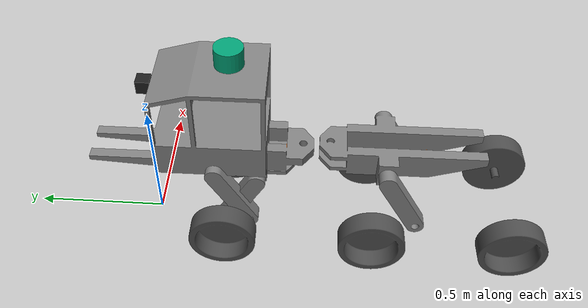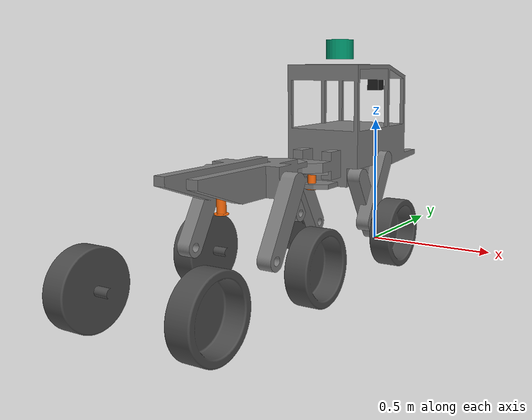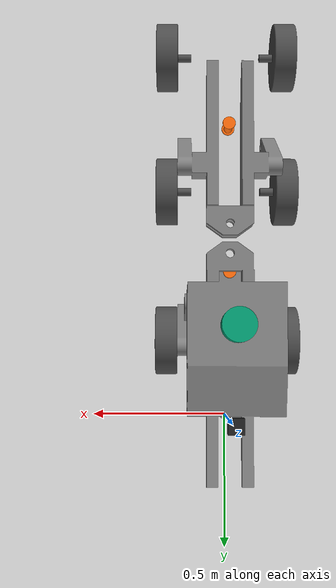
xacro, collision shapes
<?xml version="1.0" ?>
<robot name="testrig" xmlns:xacro="http://ros.org/wiki/xacro">
  <xacro:include filename="$(find testrig)/urdf/common_properties.xacro"/>
  <xacro:include filename="$(find testrig)/urdf/rig.gazebo.xacro"/>
  <xacro:include filename="$(find testrig)/urdf/rig.transmission.xacro"/>
  <xacro:include filename="$(find velodyne_description)/urdf/VLP-16.urdf.xacro"/>

  <xacro:property name="z" value="0.360"/>
  <!-- LIDAR -->

  <xacro:arg name="gpu" default="false"/>
  <xacro:property name="gpu" value="$(arg gpu)" />
  <!-- CAMERA -->
  <xacro:property name="camera_link" value="0.05" /> <!-- Size of square 'camera' box -->
  <xacro:property name="imu_link" value="0.05" />

  <link name="base_footprint">
  </link>

  <joint name="base_joint" type="fixed">
    <parent link="base_footprint"/>
    <child link="base_link1"/>
    <origin xyz="0 -0.44 0" rpy="0 0 0"/>
  </joint>

<!-- Front -->
  <link name="base_link1">
    <visual>
      <origin xyz="0 0 ${z}" rpy="0 0 0"/>
      <geometry>
        <mesh filename="package://testrig/stl/framvagn.stl" scale="0.001 0.001 0.001"/>
      </geometry>
      <material name="grey"/>
    </visual>
	<collision>
		<origin xyz="0 0 ${z}" rpy="0 0 0"/>
		<geometry>
			<mesh filename="package://testrig/stl/framvagn.stl" scale="0.001 0.001 0.001"/>
		</geometry>
	</collision>
    <inertial>
      <origin xyz="0 0 ${z}" />
      <mass value="20" />
      <inertia ixx="4.767" ixy="0" ixz="0"
               iyy="1.653" iyz="0.863"
               izz="4.094" />
      </inertial>
  </link>

  <!-- LIDAR, CAMERA, IMU -->

  <VLP-16 parent="base_link1" name="velodyne">
    <origin xyz="0 0.13 0.75" rpy="0 0 0" />
  </VLP-16>

  <joint name="camera_joint" type="fixed">
    <axis xyz="0 1 0" />
    <origin xyz="0 0.4315 0.65" rpy="0 0 1.57"/>
    <parent link="base_link1"/>
    <child link="camera_link"/>
  </joint>

  <!-- Camera -->
  <link name="camera_link">
    <collision>
      <origin xyz="0 0 0" rpy="0 0 0"/>
      <geometry>
    <box size="${camera_link} ${camera_link} ${camera_link}"/>
      </geometry>
    </collision>
    <visual>
      <origin xyz="0 0 0" rpy="0 0 0"/>
      <geometry>
    <box size="${camera_link} ${camera_link} ${camera_link}"/>
      </geometry>
      <material name="Black"/>
    </visual>
    <inertial>
      <mass value="1e-5" />
      <origin xyz="0 0 0" rpy="0 0 0"/>
      <inertia ixx="1e-6" ixy="0" ixz="0" iyy="1e-6" iyz="0" izz="1e-6" />
    </inertial>
  </link>

<!-- Front LW-->
  <joint name="wheel_front_left_joint" type="continuous">
    <parent link="base_link1"/>
    <child link="wheel_front_left_link"/>
    <origin xyz="-0.130 0.160 ${z-0.252}" rpy="1.57 -1.57 0"/>
    <axis xyz="0 1 0"/>
  </joint>

  <link name="wheel_front_left_link">
    <visual>
      <origin xyz="0 0 0" rpy="0 0 0"/>
      <geometry>
        <mesh filename="package://testrig/stl/wheel.stl" scale="0.001 0.001 0.001"/>
      </geometry>
      <material name="dark"/>
    </visual>
    <collision>
		<origin xyz="0 0 0" rpy="0 0 0"/>
		<geometry>
			<mesh filename="package://testrig/stl/wheel.stl" scale="0.001 0.001 0.001"/>
		</geometry>
	</collision>
    <inertial>
      <origin xyz="0 0 0" />
      <mass value="1" />
      <inertia ixx="0.023" ixy="0" ixz="0"
               iyy="0.020" iyz="0"
               izz="0.023" />
      </inertial>
  </link>
<!-- Front LW-->
  <joint name="wheel_front_right_joint" type="continuous">
    <parent link="base_link1"/>
    <child link="wheel_front_right_link"/>
    <origin xyz="0.130 0.160 ${z-0.252}" rpy="1.57 1.57 0"/>
    <axis xyz="0 -1 0"/>
  </joint>

  <link name="wheel_front_right_link">
    <visual>
      <origin xyz="0 0 0" rpy="0 0 0"/>
      <geometry>
        <mesh filename="package://testrig/stl/wheel.stl" scale="0.001 0.001 0.001"/>
      </geometry>
      <material name="dark"/>
    </visual>
    <collision>
		<origin xyz="0 0 0" rpy="0 0 0"/>
		<geometry>
			<mesh filename="package://testrig/stl/wheel.stl" scale="0.001 0.001 0.001"/>
		</geometry>
	</collision>
    <inertial>
      <origin xyz="0 0 0" />
      <mass value="1" />
      <inertia ixx="0.023" ixy="0" ixz="0"
               iyy="0.020" iyz="0"
               izz="0.023" />
      </inertial>
  </link>
<!-- Joint between front and middle -->
  <joint name="front_joint_middle" type="revolute">
    <parent link="base_link1"/>
    <child link="front_link_middle"/>
    <limit effort="1000" lower="-0.75" upper="0.75" velocity="0.5" />
    <origin xyz="0.0 -0.070 ${z-0.035}" rpy="1.57 0 0"/>
    <axis xyz="0 1 0"/>
  </joint>

  <link name="front_link_middle">
    <visual>
      <origin xyz="0 0 0" rpy="0 0 0"/>
      <geometry>
        <mesh filename="package://testrig/stl/pin.stl" scale="0.001 0.001 0.001"/>
      </geometry>
      <material name="orange"/>
    </visual>
    <collision>
		<origin xyz="0 0 0" rpy="0 0 0"/>
		<geometry>
			<mesh filename="package://testrig/stl/pin.stl" scale="0.001 0.001 0.001"/>
		</geometry>
	</collision>
    <inertial>
      <origin xyz="0 0 0" />
      <mass value="1" />
      <inertia ixx="0" ixy="0" ixz="0"
               iyy="0" iyz="0"
               izz="0" />
     </inertial>

  </link>

<!-- Middle -->
  <joint name="middle_joint_front" type="fixed">
    <parent link="front_link_middle" />
    <child link = "middle_base" />
    <origin xyz="0.0 0.0 0" rpy="-1.57 0.0 1.57" />
  </joint>

  <link name="middle_base">
    <visual>
      <origin xyz="-0.05 -0.460 0" rpy="0 0 0"/>
      <geometry>
        <mesh filename="package://testrig/stl/mitten.stl" scale="0.001 0.001 0.001"/>
      </geometry>
      <material name="grey"/>
    </visual>
    <collision>
		<origin xyz="0 0 0" rpy="0 0 0"/>
		<geometry>
			<mesh filename="package://testrig/stl/mitten.stl" scale="0.001 0.001 0.001"/>
		</geometry>
	</collision>
    <inertial>
      <origin xyz="0 0 0" />
      <mass value="10" />
      <inertia ixx="1.223" ixy="0.097" ixz="0"
               iyy="0.268" iyz="0"
               izz="1.125" />
     </inertial>
  </link>

<!-- Middle RW-->
  <joint name="wheel_middle_right_joint" type="continuous">
    <parent link="middle_base" />
    <child link = "wheel_middle_right_link" />
    <origin xyz="-0.218 -0.330 -0.130" rpy="-1.57 0 0" />
    <axis xyz="0 -1 0"/>
  </joint>

  <link name="wheel_middle_right_link">
    <visual>
      <origin xyz="0 0 0" rpy="0 0 0"/>
      <geometry>
        <mesh filename="package://testrig/stl/wheel.stl" scale="0.001 0.001 0.001"/>
      </geometry>
      <material name="dark"/>
    </visual>
    <collision>
		<origin xyz="0 0 0" rpy="0 0 0"/>
		<geometry>
			<mesh filename="package://testrig/stl/wheel.stl" scale="0.001 0.001 0.001"/>
		</geometry>
	</collision>
    <inertial>
      <origin xyz="0 0 0" />
      <mass value="1" />
      <inertia ixx="0.023" ixy="0" ixz="0"
               iyy="0.020" iyz="0"
               izz="0.023" />
      </inertial>

  </link>

<!-- Middle LW-->
  <joint name="wheel_middle_left_joint" type="continuous">
    <parent link="middle_base" />
    <child link = "wheel_middle_left_link" />
    <origin xyz="-0.218 -0.330 0.130" rpy="1.57 0 0.0" />
    <axis xyz="0 1 0"/>
  </joint>

  <link name="wheel_middle_left_link">
    <visual>
      <origin xyz="0 0 0" rpy="0 0 0"/>
      <geometry>
        <mesh filename="package://testrig/stl/wheel.stl" scale="0.001 0.001 0.001"/>
      </geometry>
      <material name="dark"/>
    </visual>
    <collision>
		<origin xyz="0 0 0" rpy="0 0 0"/>
		<geometry>
			<mesh filename="package://testrig/stl/wheel.stl" scale="0.001 0.001 0.001"/>
		</geometry>
	</collision>
    <inertial>
      <origin xyz="0 0 0" />
      <mass value="1" />
      <inertia ixx="0.023" ixy="0" ixz="0"
               iyy="0.020" iyz="0"
               izz="0.023" />
      </inertial>

  </link>

<!-- Joint between middle and back -->
  <joint name="middle_joint_back" type="revolute">
    <parent link="middle_base" />
    <child link = "middle_link_back" />
    <limit effort="1000" lower="-0.75" upper="0.75" velocity="0.5" />
    <origin xyz="0 -0.520 0" rpy="0 0 1.57" />
    <axis xyz="0 1 0"/>
  </joint>

  <link name="middle_link_back">
    <visual>
      <origin xyz="0 0 0" rpy="0 0 0"/>
      <geometry>
        <mesh filename="package://testrig/stl/pin.stl" scale="0.001 0.001 0.001"/>
      </geometry>
      <material name="orange"/>
    </visual>
    <collision>
		<origin xyz="0 0 0" rpy="0 0 0"/>
		<geometry>
			<mesh filename="package://testrig/stl/pin.stl" scale="0.001 0.001 0.001"/>
		</geometry>
	</collision>
    <inertial>
      <origin xyz="0 0 0" />
      <mass value="1" />
      <inertia ixx="0" ixy="0" ixz="0"
               iyy="0" iyz="0"
               izz="0" />
     </inertial>
  </link>

<!-- Back -->
  <joint name="back_joint_middle" type="fixed">
    <parent link="middle_link_back" />
    <child link = "back_base" />
    <origin xyz="0.0 0.0 0" rpy="0 0 -1.57" />
  </joint>

  <link name="back_base">
    <visual>
      <origin xyz="-0.05 -0.360 0" rpy="0 0 0"/>
      <geometry>
        <mesh filename="package://testrig/stl/bak.stl" scale="0.001 0.001 0.001"/>
      </geometry>
      <material name="grey"/>
    </visual>
    <collision>
		<origin xyz="0 0 0" rpy="0 0 0"/>
		<geometry>
			<mesh filename="package://testrig/stl/bak.stl" scale="0.001 0.001 0.001"/>
		</geometry>
	</collision>
    <inertial>
      <origin xyz="0 0 0" />
      <mass value="7" />
      <inertia ixx="0.656" ixy="0.058" ixz="0"
               iyy="0.271" iyz="0"
               izz="0.562" />
     </inertial>

  </link>

<!-- Back RW -->
  <joint name="wheel_back_right_joint" type="continuous">
    <parent link="back_base" />
    <child link = "wheel_back_right_link" />
    <origin xyz="-0.218 -0.330 -0.130" rpy="-1.57 0 0" />
    <axis xyz="0 -1 0"/>
  </joint>

  <link name="wheel_back_right_link">
    <visual>
      <origin xyz="0 0 0" rpy="0 0 0"/>
      <geometry>
        <mesh filename="package://testrig/stl/wheel.stl" scale="0.001 0.001 0.001"/>
      </geometry>
      <material name="dark"/>
    </visual>
    <collision>
		<origin xyz="0 0 0" rpy="0 0 0"/>
		<geometry>
			<mesh filename="package://testrig/stl/wheel.stl" scale="0.001 0.001 0.001"/>
		</geometry>
	</collision>
    <inertial>
      <origin xyz="0 0 0" />
      <mass value="1" />
      <inertia ixx="0.023" ixy="0" ixz="0"
               iyy="0.020" iyz="0"
               izz="0.023" />
      </inertial>

  </link>
<!-- Back LW-->
  <joint name="wheel_back_left_joint" type="continuous">
    <parent link="back_base" />
    <child link = "wheel_back_left_link" />
    <origin xyz="-0.218 -0.330 0.130" rpy="1.57 0 0" />
    <axis xyz="0 1 0"/>
  </joint>

  <link name="wheel_back_left_link">
    <visual>
      <origin xyz="0 0 0" rpy="0 0 0"/>
      <geometry>
        <mesh filename="package://testrig/stl/wheel.stl" scale="0.001 0.001 0.001"/>
      </geometry>
      <material name="dark"/>
    </visual>
    <collision>
		<origin xyz="0 0 0" rpy="0 0 0"/>
		<geometry>
			<mesh filename="package://testrig/stl/wheel.stl" scale="0.001 0.001 0.001"/>
		</geometry>
	</collision>
    <inertial>
      <origin xyz="0 0 0" />
      <mass value="1" />
      <inertia ixx="0.023" ixy="0" ixz="0"
               iyy="0.020" iyz="0"
               izz="0.023" />
      </inertial>
  </link>

  <gazebo>
	<plugin name="gazebo_ros_control" filename="libgazebo_ros_control.so">
    </plugin>
  </gazebo>

</robot>

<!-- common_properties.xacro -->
<robot name="xacro_properties" xmlns:xacro="http://ros.org/wiki/xacro">

  <!-- Init colour -->
  <material name="black">
      <color rgba="0.0 0.0 0.0 1"/>
  </material>

  <material name="dark">
    <color rgba="0.3 0.3 0.3 1"/>
  </material>
  <material name="light_black">
    <color rgba="0.4 0.4 0.4 1"/>
  </material>

  <material name="blue">
    <color rgba="0.0 0.0 0.8 1"/>
  </material>

  <material name="green">
    <color rgba="0.0 0.8 0.0 1"/>
  </material>

  <material name="grey">
    <color rgba="0.5 0.5 0.5 1"/>
  </material>

  <material name="orange">
    <color rgba="${255/255} ${108/255} ${10/255} 1"/>
  </material>

  <material name="brown">
    <color rgba="${222/255} ${207/255} ${195/255} 1"/>
  </material>

  <material name="red">
    <color rgba="0.8 0.0 0.0 1"/>
  </material>

  <material name="white">
    <color rgba="1.0 1.0 1.0 1"/>
  </material>
</robot>

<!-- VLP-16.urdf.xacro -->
<robot xmlns:xacro="http://www.ros.org/wiki/xacro" name="VLP-16">
  <xacro:property name="M_PI" value="3.1415926535897931" />
  <xacro:macro name="VLP-16" params="*origin is_sim:=true parent:=base_link name:=velodyne tf_prefix:='' topic:=/velodyne_points organize_cloud:=false hz:=10 lasers:=16 samples:=1875 collision_range:=0.3 min_range:=0.0 max_range:=100.0 noise:=0.008 min_angle:=-${M_PI} max_angle:=${M_PI} gpu:=false">

    <joint name="${name}_base_mount_joint" type="fixed">
      <xacro:insert_block name="origin" />
      <parent link="${parent}"/>
      <child link="${name}_base_link"/>
    </joint>

    <link name="${name}_base_link">
      <inertial>
        <mass value="0.83"/>
        <origin xyz="0 0 0.03585"/>
        <inertia ixx="${(0.83 * (3.0*0.0516*0.0516 + 0.0717*0.0717)) / 12.0}" ixy="0" ixz="0"
          iyy="${(0.83 * (3.0*0.0516*0.0516 + 0.0717*0.0717)) / 12.0}" iyz="0"
          izz="${0.5 * 0.83 * (0.0516*0.0516)}"/>
      </inertial>
      <visual>
        <geometry>
          <mesh filename="package://velodyne_description/meshes/VLP16_base_1.dae" />
        </geometry>
      </visual>
      <visual>
        <geometry>
          <mesh filename="package://velodyne_description/meshes/VLP16_base_2.dae" />
        </geometry>
      </visual>
      <collision>
        <origin rpy="0 0 0" xyz="0 0 0.03585"/>
        <geometry>
          <cylinder radius="0.0516" length="0.0717"/>
        </geometry>
      </collision>
    </link>

    <joint name="${name}_base_scan_joint" type="fixed" >
      <origin xyz="0 0 0.0377" rpy="0 0 0" />
      <parent link="${name}_base_link" />
      <child link="${name}"/>
    </joint>

    <link name="${name}">
      <inertial>
        <mass value="0.01"/>
        <origin xyz="0 0 0"/>
        <inertia ixx="1e-7" ixy="0" ixz="0" iyy="1e-7" iyz="0" izz="1e-7"/>
      </inertial>
      <visual>
        <origin xyz="0 0 -0.0377" />
        <geometry>
          <mesh filename="package://velodyne_description/meshes/VLP16_scan.dae" />
        </geometry>
      </visual>
      <collision>
        <geometry>
          <sphere radius="0"/>
        </geometry>
      </collision>
    </link>

    <!-- Gazebo requires the velodyne_gazebo_plugins package -->
    <xacro:if value="${is_sim}">
        <gazebo reference="${name}">
            <xacro:if value="${gpu}">
                <sensor type="gpu_ray" name="${name}-VLP16">
                <pose>0 0 0 0 0 0</pose>
                <visualize>false</visualize>
                <update_rate>${hz}</update_rate>
                <ray>
                    <scan>
                    <horizontal>
                        <samples>${samples}</samples>
                        <resolution>1</resolution>
                        <min_angle>${min_angle}</min_angle>
                        <max_angle>${max_angle}</max_angle>
                    </horizontal>
                    <vertical>
                        <samples>${lasers}</samples>
                        <resolution>1</resolution>
                        <min_angle>-${15.0*M_PI/180.0}</min_angle>
                        <max_angle> ${15.0*M_PI/180.0}</max_angle>
                    </vertical>
                    </scan>
                    <range>
                    <min>${collision_range}</min>
                    <max>${max_range+1}</max>
                    <resolution>0.001</resolution>
                    </range>
                    <noise>
                    <type>gaussian</type>
                    <mean>0.0</mean>
                    <stddev>0.0</stddev>
                    </noise>
                </ray>
                <plugin name="gazebo_ros_laser_controller" filename="libgazebo_ros_velodyne_laser.so">
                    <ros>
                    <namespace>/${name}</namespace>
                    <remapping>~/out:=${topic}</remapping>
                    </ros>
                    <tf_prefix>${tf_prefix}</tf_prefix>
                    <frame_name>${name}</frame_name>
                    <organize_cloud>${organize_cloud}</organize_cloud>
                    <min_range>${min_range}</min_range>
                    <max_range>${max_range}</max_range>
                    <gaussian_noise>${noise}</gaussian_noise>
                </plugin>
                </sensor>
            </xacro:if>
            <xacro:unless value="${gpu}">
                <sensor type="ray" name="${name}-VLP16">
                <pose>0 0 0 0 0 0</pose>
                <visualize>false</visualize>
                <update_rate>${hz}</update_rate>
                <ray>
                    <scan>
                    <horizontal>
                        <samples>${samples}</samples>
                        <resolution>1</resolution>
                        <min_angle>${min_angle}</min_angle>
                        <max_angle>${max_angle}</max_angle>
                    </horizontal>
                    <vertical>
                        <samples>${lasers}</samples>
                        <resolution>1</resolution>
                        <min_angle>-${15.0*M_PI/180.0}</min_angle>
                        <max_angle> ${15.0*M_PI/180.0}</max_angle>
                    </vertical>
                    </scan>
                    <range>
                    <min>${collision_range}</min>
                    <max>${max_range+1}</max>
                    <resolution>0.001</resolution>
                    </range>
                    <noise>
                    <type>gaussian</type>
                    <mean>0.0</mean>
                    <stddev>0.0</stddev>
                    </noise>
                </ray>
                <plugin name="gazebo_ros_laser_controller" filename="libgazebo_ros_velodyne_laser.so">
                    <ros>
                    <namespace>/${name}</namespace>
                    <remapping>~/out:=${topic}</remapping>
                    </ros>
                    <tf_prefix>${tf_prefix}</tf_prefix>
                    <frame_name>${name}</frame_name>
                    <organize_cloud>${organize_cloud}</organize_cloud>
                    <min_range>${min_range}</min_range>
                    <max_range>${max_range}</max_range>
                    <gaussian_noise>${noise}</gaussian_noise>
                </plugin>
                </sensor>
            </xacro:unless>
        </gazebo>
    </xacro:if>

  </xacro:macro>
</robot>
